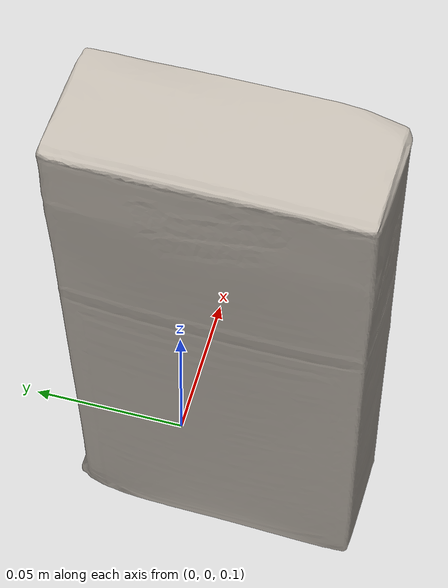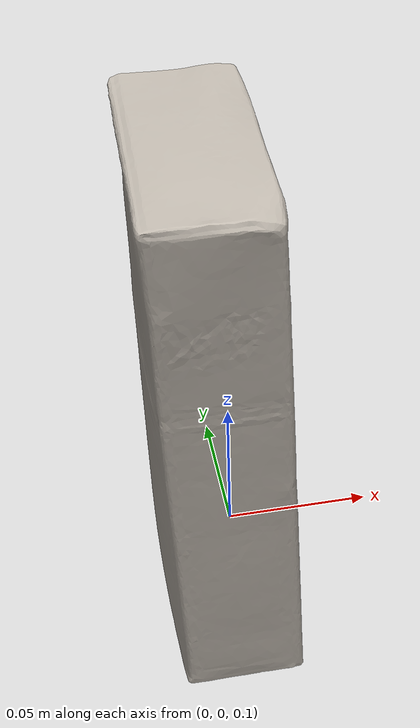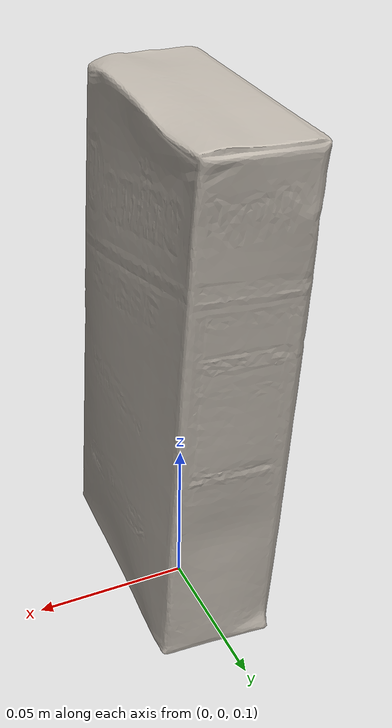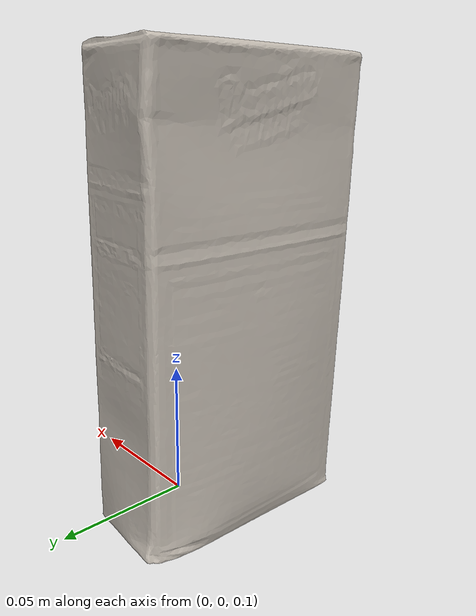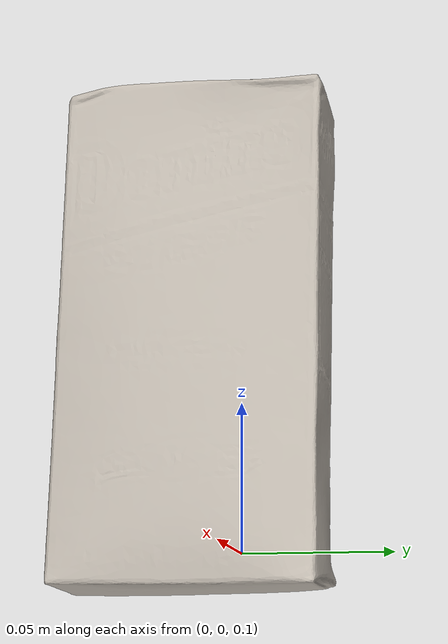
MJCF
<mujoco model="sugar_box">
  <compiler angle="radian"/>

  <asset>
    <texture name="sugar_box_tex" type="2d" file="sugar_box_texture.png"/>
    <material name="sugar_box_mat" texture="sugar_box_tex" specular="0.5" shininess="0.5"/>
    <mesh name="sugar_box_visual" file="sugar_box_visual.obj"/>
  </asset>

  <worldbody>
    <body name="sugar_box" pos="0 0 0.088">
      <freejoint name="sugar_box_joint"/>

      <!-- Collision geometry - box -->
      <geom name="sugar_box_collision"
            type="box"
            size="0.024 0.047 0.088"
            mass="0.5"
            friction="0.7 0.005 0.0001"
            contype="1"
            conaffinity="1"
            rgba="0 0 0 0"/>

      <!-- Visual mesh -->
      <geom name="sugar_box_visual"
            type="mesh"
            mesh="sugar_box_visual"
            material="sugar_box_mat"
            contype="0"
            conaffinity="0"/>
    </body>
  </worldbody>
</mujoco>
